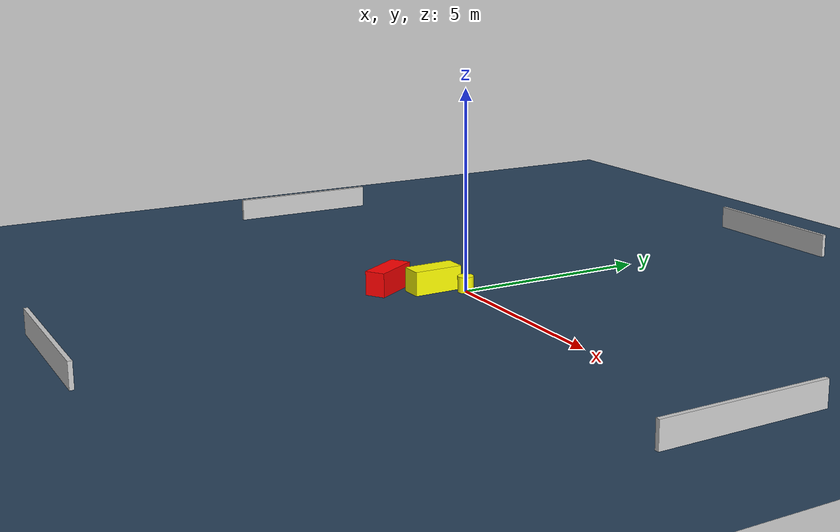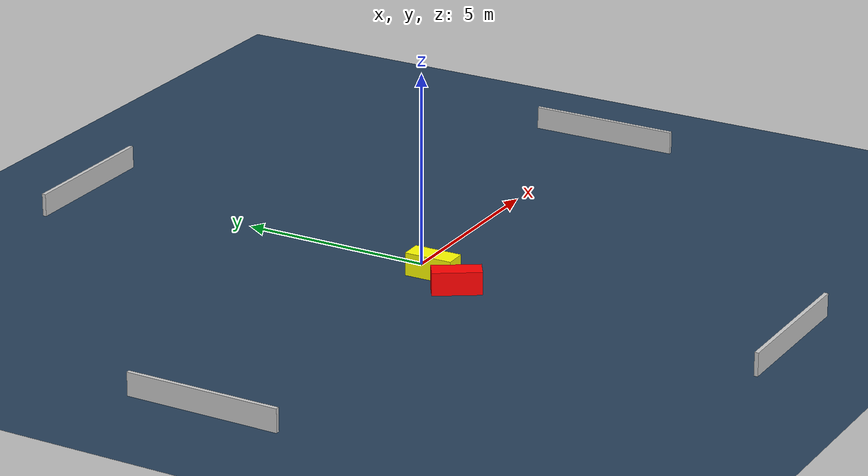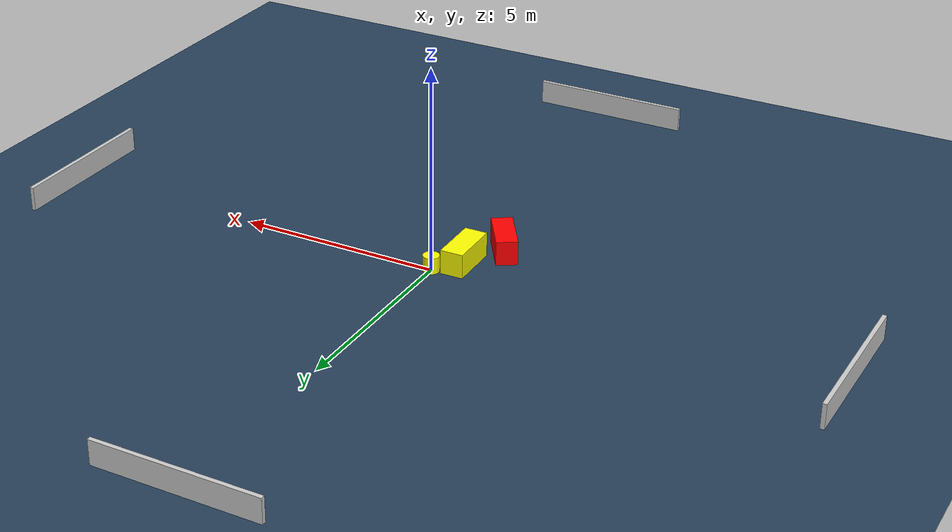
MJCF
<?xml version="1.0" ?>
<mujoco model="generated_environment">
  <option timestep="0.01" integrator="RK4" cone="elliptic"/>
  <default>
    <geom density="1"/>
  </default>
  <asset>
    <texture builtin="gradient" height="3072" name="skybox" rgb1="0.3 0.5 0.7" rgb2="0 0 0" type="skybox" width="512"/>
    <texture builtin="checker" height="300" name="groundplane" rgb1="0.2 0.3 0.4" rgb2="0.1 0.2 0.3" type="2d" width="300"/>
    <material name="groundplane" reflectance="0.2" texrepeat="5 5" texture="groundplane"/>
  </asset>
  <worldbody>
    <light dir="0 0 -1" directional="true" pos="0 0 1.5"/>
    <geom condim="3" friction="0.5 0.005 0.001" material="groundplane" name="floor" pos="0 0 0" size="0 0 0.05" type="plane"/>
    <body name="walls">
      <geom name="wall_1" condim="4" pos="-10.0 0.0 0.3" rgba="0.800000011920929 0.800000011920929 0.800000011920929 1.0" size="0.05 2.0 0.3" type="box"/>
      <geom name="wall_2" condim="4" pos="10.0 0.0 0.3" rgba="0.800000011920929 0.800000011920929 0.800000011920929 1.0" size="0.05 2.0 0.3" type="box"/>
      <geom name="wall_3" condim="4" pos="0.0 -10.0 0.3" rgba="0.800000011920929 0.800000011920929 0.800000011920929 1.0" size="2.0 0.05 0.3" type="box"/>
      <geom name="wall_4" condim="4" pos="0.0 10.0 0.3" rgba="0.800000011920929 0.800000011920929 0.800000011920929 1.0" size="2.0 0.05 0.3" type="box"/>
    </body>
    <body name="robot">
      <joint name="joint_x" type="slide" pos="0 0 0" axis="1 0 0"/>
      <joint name="joint_y" type="slide" pos="0 0 0" axis="0 1 0"/>
      <geom name="robot" type="cylinder" pos="0.0 0.0 0.2" size="0.2 0.2 0.0" mass="5.0" friction="1.0 0.005 0.0001" condim="4" rgba="1.0 1.0 0.0 1.0"/>
    </body>
    <body name="obstacle_1_movable">
      <geom name="obstacle_1_movable" condim="4" pos="-0.518323578360505 -0.6183597174332961 0.3" euler="0 0 1.1072397719315674" friction="0.0 0.005 0.001" rgba="1.0 1.0 0.0 1.0" size="0.278800196131776 0.6312060034917768 0.3" type="box" mass="0.1"/>
      <joint type="free"/>
    </body>
    <body name="obstacle_2_static">
      <geom name="obstacle_2_static" condim="4" pos="-1.0687596216578772 -1.5870921601756705 0.3" euler="0 0 212.66602262074466" friction="0.0 0.005 0.001" rgba="1.0 0.0 0.0 1.0" size="0.2581931546298624 0.6245641387638583 0.3" type="box"/>
    </body>
  </worldbody>
  <actuator>
    <motor name="actuator_x" joint="joint_x" gear="1" ctrlrange="-1 1"/>
    <motor name="actuator_y" joint="joint_y" gear="1" ctrlrange="-1 1"/>
  </actuator>
</mujoco>
